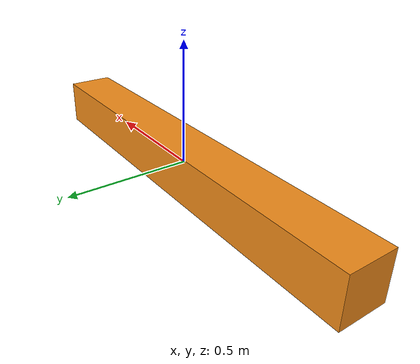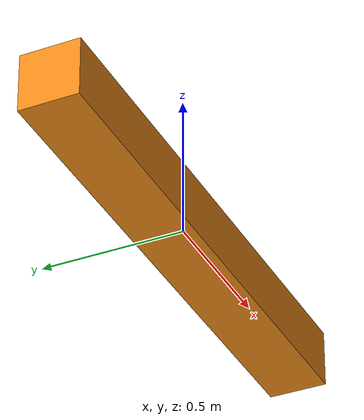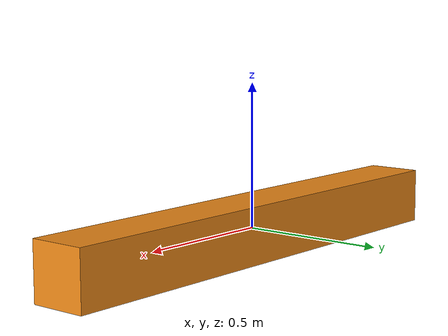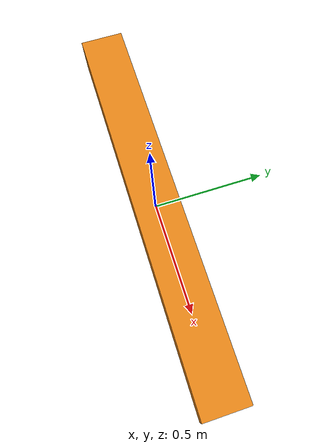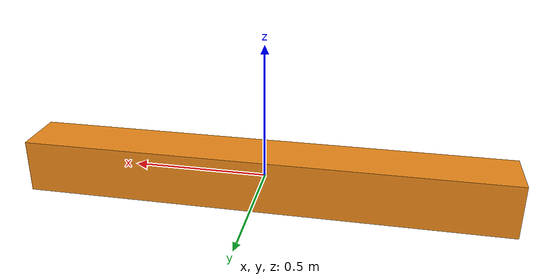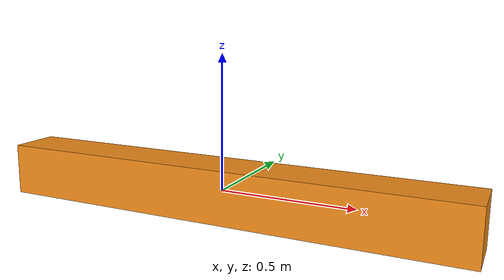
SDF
<?xml version="1.0" ?>
<sdf version="1.4">
  <model name="box_blue">
    <static>true</static>
    <link name="link">
      <inertial>
        <pose>0 0 0.1 0 0 0</pose>
        <mass>2.0</mass>
        <inertia>
          <ixx>0.01333</ixx>
          <ixy>0</ixy>
          <ixz>0</ixz>
          <iyy>0.5467</iyy>
          <iyz>0</iyz>
          <izz>0.5467</izz>
        </inertia>
      </inertial>

      <collision name="collision">
        <geometry>
          <box>
            <size>1.8 0.2 0.2</size>
          </box>
        </geometry>
      </collision>
      <visual name="visual">
        <geometry>
          <box>
            <size>1.8 0.2 0.2</size>
          </box>
        </geometry>
        <material>
          <script>
            <name>Gazebo/Orange</name>
          </script>
        </material>
      </visual>
    </link>
  </model>
</sdf>
